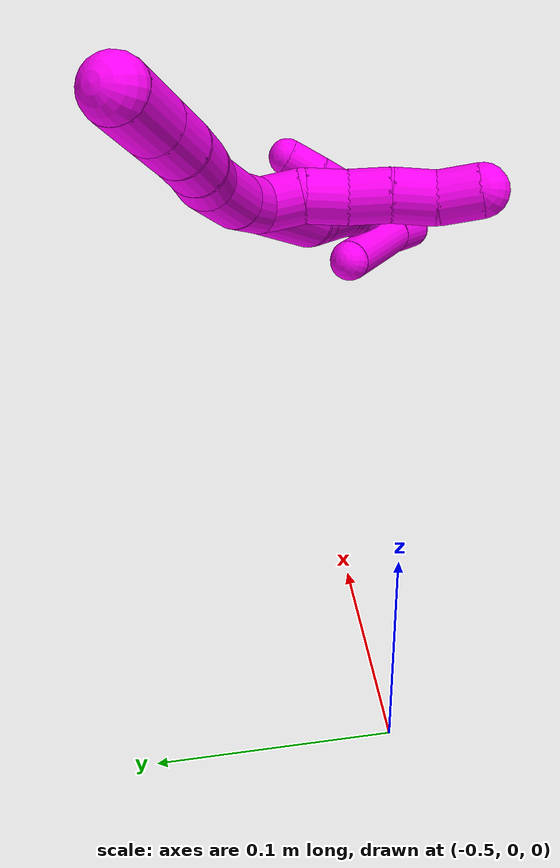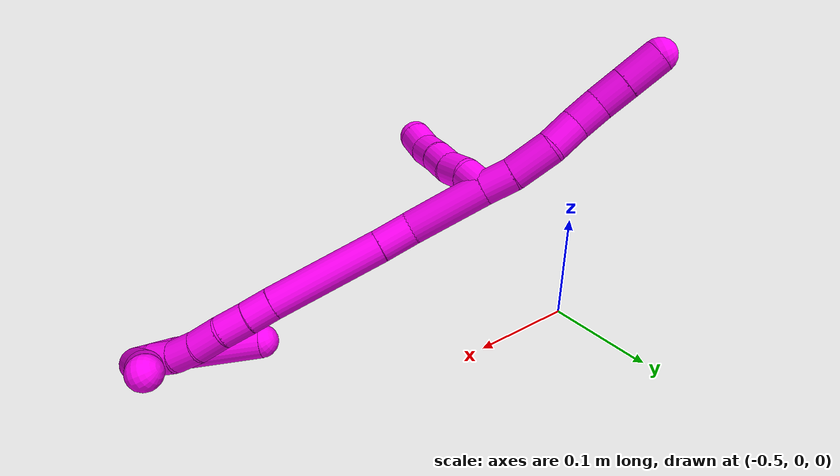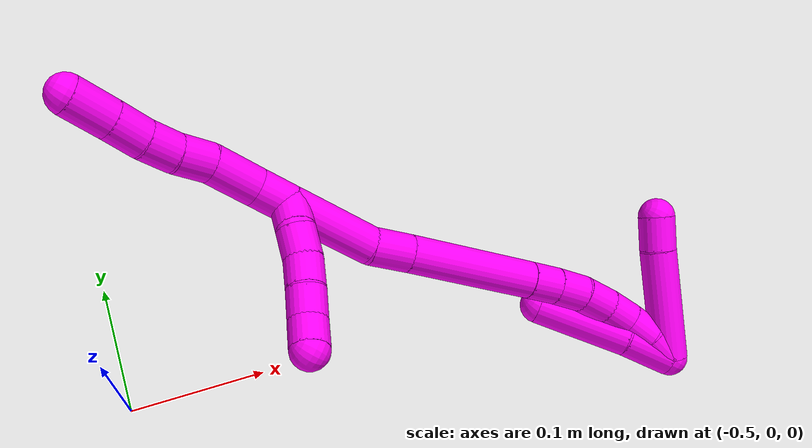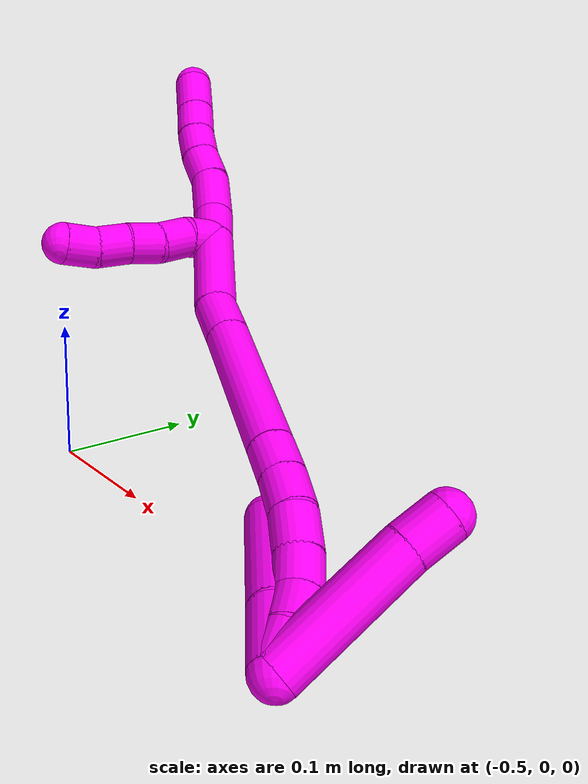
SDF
<sdf version="1.7">
 <world name="default">
  <model name="10">
   <static>0</static>
   <link name="10">
    <collision name="collision-cylinder-e_1_2_8">
     <pose>0.000237 -0.000864 0.011578 0.074522 0.020386 0.00076</pose>
     <geometry><cylinder><radius>0.0125</radius><length>0.023226</length></cylinder></geometry>
     <surface>
      <friction><ode><mu>1.16</mu><mu2>1.16</mu2><slip1>0</slip1><slip2>0</slip2></ode></friction>
      <contact><ode><kp>1e+06</kp><kd>1</kd><max_vel>0</max_vel><min_depth>0.001</min_depth></ode></contact>
     </surface>
    </collision>
    <visual name="visual-cylinder-e_1_2_8">
     <pose>0.000237 -0.000864 0.011578 0.074522 0.020386 0.00076</pose>
     <geometry><cylinder><radius>0.0125</radius><length>0.023226</length></cylinder></geometry>
     <material><ambient>1 0 0.964706 1</ambient></material>
    </visual>
    <collision name="collision-cylinder-e_2_8_9">
     <pose>0.003082 -0.004324 0.039095 0.161377 0.160139 0.012977</pose>
     <geometry><cylinder><radius>0.0125</radius><length>0.032716</length></cylinder></geometry>
     <surface>
      <friction><ode><mu>1.16</mu><mu2>1.16</mu2><slip1>0</slip1><slip2>0</slip2></ode></friction>
      <contact><ode><kp>1e+06</kp><kd>1</kd><max_vel>0</max_vel><min_depth>0.001</min_depth></ode></contact>
     </surface>
    </collision>
    <visual name="visual-cylinder-e_2_8_9">
     <pose>0.003082 -0.004324 0.039095 0.161377 0.160139 0.012977</pose>
     <geometry><cylinder><radius>0.0125</radius><length>0.032716</length></cylinder></geometry>
     <material><ambient>1 0 0.964706 1</ambient></material>
    </visual>
    <collision name="collision-cylinder-e_3_9_10">
     <pose>0.007492 -0.011322 0.065413 0.401269 0.158516 0.032302</pose>
     <geometry><cylinder><radius>0.0125</radius><length>0.022835</length></cylinder></geometry>
     <surface>
      <friction><ode><mu>1.16</mu><mu2>1.16</mu2><slip1>0</slip1><slip2>0</slip2></ode></friction>
      <contact><ode><kp>1e+06</kp><kd>1</kd><max_vel>0</max_vel><min_depth>0.001</min_depth></ode></contact>
     </surface>
    </collision>
    <visual name="visual-cylinder-e_3_9_10">
     <pose>0.007492 -0.011322 0.065413 0.401269 0.158516 0.032302</pose>
     <geometry><cylinder><radius>0.0125</radius><length>0.022835</length></cylinder></geometry>
     <material><ambient>1 0 0.964706 1</ambient></material>
    </visual>
    <collision name="collision-cylinder-e_4_10_11">
     <pose>0.011429 -0.018384 0.085736 0.261245 0.204463 0.026953</pose>
     <geometry><cylinder><radius>0.0125</radius><length>0.021026</length></cylinder></geometry>
     <surface>
      <friction><ode><mu>1.16</mu><mu2>1.16</mu2><slip1>0</slip1><slip2>0</slip2></ode></friction>
      <contact><ode><kp>1e+06</kp><kd>1</kd><max_vel>0</max_vel><min_depth>0.001</min_depth></ode></contact>
     </surface>
    </collision>
    <visual name="visual-cylinder-e_4_10_11">
     <pose>0.011429 -0.018384 0.085736 0.261245 0.204463 0.026953</pose>
     <geometry><cylinder><radius>0.0125</radius><length>0.021026</length></cylinder></geometry>
     <material><ambient>1 0 0.964706 1</ambient></material>
    </visual>
    <collision name="collision-cylinder-e_5_11_12">
     <pose>0.016145 -0.022657 0.106313 0.150636 0.235613 0.017862</pose>
     <geometry><cylinder><radius>0.0125</radius><length>0.022118</length></cylinder></geometry>
     <surface>
      <friction><ode><mu>1.16</mu><mu2>1.16</mu2><slip1>0</slip1><slip2>0</slip2></ode></friction>
      <contact><ode><kp>1e+06</kp><kd>1</kd><max_vel>0</max_vel><min_depth>0.001</min_depth></ode></contact>
     </surface>
    </collision>
    <visual name="visual-cylinder-e_5_11_12">
     <pose>0.016145 -0.022657 0.106313 0.150636 0.235613 0.017862</pose>
     <geometry><cylinder><radius>0.0125</radius><length>0.022118</length></cylinder></geometry>
     <material><ambient>1 0 0.964706 1</ambient></material>
    </visual>
    <collision name="collision-cylinder-e_6_12_6">
     <pose>0.021925 -0.026537 0.130426 0.166571 0.22981 0.019268</pose>
     <geometry><cylinder><radius>0.0125</radius><length>0.028079</length></cylinder></geometry>
     <surface>
      <friction><ode><mu>1.16</mu><mu2>1.16</mu2><slip1>0</slip1><slip2>0</slip2></ode></friction>
      <contact><ode><kp>1e+06</kp><kd>1</kd><max_vel>0</max_vel><min_depth>0.001</min_depth></ode></contact>
     </surface>
    </collision>
    <visual name="visual-cylinder-e_6_12_6">
     <pose>0.021925 -0.026537 0.130426 0.166571 0.22981 0.019268</pose>
     <geometry><cylinder><radius>0.0125</radius><length>0.028079</length></cylinder></geometry>
     <material><ambient>1 0 0.964706 1</ambient></material>
    </visual>
    <collision name="collision-cylinder-e_1_2_13">
     <pose>0.002767 -0.008554 -0.004379 2.04399 0.280353 0.453586</pose>
     <geometry><cylinder><radius>0.0125</radius><length>0.02</length></cylinder></geometry>
     <surface>
      <friction><ode><mu>1.16</mu><mu2>1.16</mu2><slip1>0</slip1><slip2>0</slip2></ode></friction>
      <contact><ode><kp>1e+06</kp><kd>1</kd><max_vel>0</max_vel><min_depth>0.001</min_depth></ode></contact>
     </surface>
    </collision>
    <visual name="visual-cylinder-e_1_2_13">
     <pose>0.002767 -0.008554 -0.004379 2.04399 0.280353 0.453586</pose>
     <geometry><cylinder><radius>0.0125</radius><length>0.02</length></cylinder></geometry>
     <material><ambient>1 0 0.964706 1</ambient></material>
    </visual>
    <collision name="collision-cylinder-e_2_13_14">
     <pose>0.005784 -0.025307 -0.014478 2.17984 0.024979 0.047871</pose>
     <geometry><cylinder><radius>0.0125</radius><length>0.02</length></cylinder></geometry>
     <surface>
      <friction><ode><mu>1.16</mu><mu2>1.16</mu2><slip1>0</slip1><slip2>0</slip2></ode></friction>
      <contact><ode><kp>1e+06</kp><kd>1</kd><max_vel>0</max_vel><min_depth>0.001</min_depth></ode></contact>
     </surface>
    </collision>
    <visual name="visual-cylinder-e_2_13_14">
     <pose>0.005784 -0.025307 -0.014478 2.17984 0.024979 0.047871</pose>
     <geometry><cylinder><radius>0.0125</radius><length>0.02</length></cylinder></geometry>
     <material><ambient>1 0 0.964706 1</ambient></material>
    </visual>
    <collision name="collision-cylinder-e_3_14_15">
     <pose>0.007071 -0.042651 -0.024107 1.97482 0.103945 0.157305</pose>
     <geometry><cylinder><radius>0.0125</radius><length>0.02</length></cylinder></geometry>
     <surface>
      <friction><ode><mu>1.16</mu><mu2>1.16</mu2><slip1>0</slip1><slip2>0</slip2></ode></friction>
      <contact><ode><kp>1e+06</kp><kd>1</kd><max_vel>0</max_vel><min_depth>0.001</min_depth></ode></contact>
     </surface>
    </collision>
    <visual name="visual-cylinder-e_3_14_15">
     <pose>0.007071 -0.042651 -0.024107 1.97482 0.103945 0.157305</pose>
     <geometry><cylinder><radius>0.0125</radius><length>0.02</length></cylinder></geometry>
     <material><ambient>1 0 0.964706 1</ambient></material>
    </visual>
    <collision name="collision-cylinder-e_4_15_16">
     <pose>0.007949 -0.060873 -0.032212 2.00377 -0.015987 -0.025001</pose>
     <geometry><cylinder><radius>0.0125</radius><length>0.02</length></cylinder></geometry>
     <surface>
      <friction><ode><mu>1.16</mu><mu2>1.16</mu2><slip1>0</slip1><slip2>0</slip2></ode></friction>
      <contact><ode><kp>1e+06</kp><kd>1</kd><max_vel>0</max_vel><min_depth>0.001</min_depth></ode></contact>
     </surface>
    </collision>
    <visual name="visual-cylinder-e_4_15_16">
     <pose>0.007949 -0.060873 -0.032212 2.00377 -0.015987 -0.025001</pose>
     <geometry><cylinder><radius>0.0125</radius><length>0.02</length></cylinder></geometry>
     <material><ambient>1 0 0.964706 1</ambient></material>
    </visual>
    <collision name="collision-cylinder-e_5_16_5">
     <pose>0.00991 -0.07921 -0.039526 1.89565 0.213747 0.296475</pose>
     <geometry><cylinder><radius>0.0125</radius><length>0.02</length></cylinder></geometry>
     <surface>
      <friction><ode><mu>1.16</mu><mu2>1.16</mu2><slip1>0</slip1><slip2>0</slip2></ode></friction>
      <contact><ode><kp>1e+06</kp><kd>1</kd><max_vel>0</max_vel><min_depth>0.001</min_depth></ode></contact>
     </surface>
    </collision>
    <visual name="visual-cylinder-e_5_16_5">
     <pose>0.00991 -0.07921 -0.039526 1.89565 0.213747 0.296475</pose>
     <geometry><cylinder><radius>0.0125</radius><length>0.02</length></cylinder></geometry>
     <material><ambient>1 0 0.964706 1</ambient></material>
    </visual>
    <collision name="collision-cylinder-e_1_2_17">
     <pose>-0.001664 0.003063 -0.029795 -3.03915 -0.05549 0.992294</pose>
     <geometry><cylinder><radius>0.0125</radius><length>0.059997</length></cylinder></geometry>
     <surface>
      <friction><ode><mu>1.16</mu><mu2>1.16</mu2><slip1>0</slip1><slip2>0</slip2></ode></friction>
      <contact><ode><kp>1e+06</kp><kd>1</kd><max_vel>0</max_vel><min_depth>0.001</min_depth></ode></contact>
     </surface>
    </collision>
    <visual name="visual-cylinder-e_1_2_17">
     <pose>-0.001664 0.003063 -0.029795 -3.03915 -0.05549 0.992294</pose>
     <geometry><cylinder><radius>0.0125</radius><length>0.059997</length></cylinder></geometry>
     <material><ambient>1 0 0.964706 1</ambient></material>
    </visual>
    <collision name="collision-cylinder-e_2_17_18">
     <pose>-0.002317 0.010422 -0.072305 -2.81578 0.075179 -0.449862</pose>
     <geometry><cylinder><radius>0.0125</radius><length>0.026917</length></cylinder></geometry>
     <surface>
      <friction><ode><mu>1.16</mu><mu2>1.16</mu2><slip1>0</slip1><slip2>0</slip2></ode></friction>
      <contact><ode><kp>1e+06</kp><kd>1</kd><max_vel>0</max_vel><min_depth>0.001</min_depth></ode></contact>
     </surface>
    </collision>
    <visual name="visual-cylinder-e_2_17_18">
     <pose>-0.002317 0.010422 -0.072305 -2.81578 0.075179 -0.449862</pose>
     <geometry><cylinder><radius>0.0125</radius><length>0.026917</length></cylinder></geometry>
     <material><ambient>1 0 0.964706 1</ambient></material>
    </visual>
    <collision name="collision-cylinder-e_3_18_19">
     <pose>0.002656 0.027546 -0.126918 -2.84448 0.090177 -0.585628</pose>
     <geometry><cylinder><radius>0.0125</radius><length>0.087995</length></cylinder></geometry>
     <surface>
      <friction><ode><mu>1.16</mu><mu2>1.16</mu2><slip1>0</slip1><slip2>0</slip2></ode></friction>
      <contact><ode><kp>1e+06</kp><kd>1</kd><max_vel>0</max_vel><min_depth>0.001</min_depth></ode></contact>
     </surface>
    </collision>
    <visual name="visual-cylinder-e_3_18_19">
     <pose>0.002656 0.027546 -0.126918 -2.84448 0.090177 -0.585628</pose>
     <geometry><cylinder><radius>0.0125</radius><length>0.087995</length></cylinder></geometry>
     <material><ambient>1 0 0.964706 1</ambient></material>
    </visual>
    <collision name="collision-cylinder-e_4_19_20">
     <pose>0.007196 0.043534 -0.178692 -2.83186 0.055597 -0.352523</pose>
     <geometry><cylinder><radius>0.0125</radius><length>0.020768</length></cylinder></geometry>
     <surface>
      <friction><ode><mu>1.16</mu><mu2>1.16</mu2><slip1>0</slip1><slip2>0</slip2></ode></friction>
      <contact><ode><kp>1e+06</kp><kd>1</kd><max_vel>0</max_vel><min_depth>0.001</min_depth></ode></contact>
     </surface>
    </collision>
    <visual name="visual-cylinder-e_4_19_20">
     <pose>0.007196 0.043534 -0.178692 -2.83186 0.055597 -0.352523</pose>
     <geometry><cylinder><radius>0.0125</radius><length>0.020768</length></cylinder></geometry>
     <material><ambient>1 0 0.964706 1</ambient></material>
    </visual>
    <collision name="collision-cylinder-e_5_20_21">
     <pose>0.008308 0.049355 -0.199015 -2.89229 0.049583 -0.390746</pose>
     <geometry><cylinder><radius>0.0125</radius><length>0.021589</length></cylinder></geometry>
     <surface>
      <friction><ode><mu>1.16</mu><mu2>1.16</mu2><slip1>0</slip1><slip2>0</slip2></ode></friction>
      <contact><ode><kp>1e+06</kp><kd>1</kd><max_vel>0</max_vel><min_depth>0.001</min_depth></ode></contact>
     </surface>
    </collision>
    <visual name="visual-cylinder-e_5_20_21">
     <pose>0.008308 0.049355 -0.199015 -2.89229 0.049583 -0.390746</pose>
     <geometry><cylinder><radius>0.0125</radius><length>0.021589</length></cylinder></geometry>
     <material><ambient>1 0 0.964706 1</ambient></material>
    </visual>
    <collision name="collision-cylinder-e_6_21_22">
     <pose>0.007952 0.05355 -0.220453 -3.00278 -0.080126 1.04605</pose>
     <geometry><cylinder><radius>0.0125</radius><length>0.022265</length></cylinder></geometry>
     <surface>
      <friction><ode><mu>1.16</mu><mu2>1.16</mu2><slip1>0</slip1><slip2>0</slip2></ode></friction>
      <contact><ode><kp>1e+06</kp><kd>1</kd><max_vel>0</max_vel><min_depth>0.001</min_depth></ode></contact>
     </surface>
    </collision>
    <visual name="visual-cylinder-e_6_21_22">
     <pose>0.007952 0.05355 -0.220453 -3.00278 -0.080126 1.04605</pose>
     <geometry><cylinder><radius>0.0125</radius><length>0.022265</length></cylinder></geometry>
     <material><ambient>1 0 0.964706 1</ambient></material>
    </visual>
    <collision name="collision-cylinder-e_7_22_23">
     <pose>0.006682 0.055104 -0.241669 -3.13977 -0.037012 3.04296</pose>
     <geometry><cylinder><radius>0.0125</radius><length>0.020468</length></cylinder></geometry>
     <surface>
      <friction><ode><mu>1.16</mu><mu2>1.16</mu2><slip1>0</slip1><slip2>0</slip2></ode></friction>
      <contact><ode><kp>1e+06</kp><kd>1</kd><max_vel>0</max_vel><min_depth>0.001</min_depth></ode></contact>
     </surface>
    </collision>
    <visual name="visual-cylinder-e_7_22_23">
     <pose>0.006682 0.055104 -0.241669 -3.13977 -0.037012 3.04296</pose>
     <geometry><cylinder><radius>0.0125</radius><length>0.020468</length></cylinder></geometry>
     <material><ambient>1 0 0.964706 1</ambient></material>
    </visual>
    <collision name="collision-cylinder-e_8_23_24">
     <pose>0.007314 0.053154 -0.261649 2.9424 0.101306 0.939007</pose>
     <geometry><cylinder><radius>0.0125</radius><length>0.020001</length></cylinder></geometry>
     <surface>
      <friction><ode><mu>1.16</mu><mu2>1.16</mu2><slip1>0</slip1><slip2>0</slip2></ode></friction>
      <contact><ode><kp>1e+06</kp><kd>1</kd><max_vel>0</max_vel><min_depth>0.001</min_depth></ode></contact>
     </surface>
    </collision>
    <visual name="visual-cylinder-e_8_23_24">
     <pose>0.007314 0.053154 -0.261649 2.9424 0.101306 0.939007</pose>
     <geometry><cylinder><radius>0.0125</radius><length>0.020001</length></cylinder></geometry>
     <material><ambient>1 0 0.964706 1</ambient></material>
    </visual>
    <collision name="collision-cylinder-e_9_24_1">
     <pose>0.007432 0.04841 -0.280966 2.85913 -0.089553 -0.610589</pose>
     <geometry><cylinder><radius>0.0125</radius><length>0.02</length></cylinder></geometry>
     <surface>
      <friction><ode><mu>1.16</mu><mu2>1.16</mu2><slip1>0</slip1><slip2>0</slip2></ode></friction>
      <contact><ode><kp>1e+06</kp><kd>1</kd><max_vel>0</max_vel><min_depth>0.001</min_depth></ode></contact>
     </surface>
    </collision>
    <visual name="visual-cylinder-e_9_24_1">
     <pose>0.007432 0.04841 -0.280966 2.85913 -0.089553 -0.610589</pose>
     <geometry><cylinder><radius>0.0125</radius><length>0.02</length></cylinder></geometry>
     <material><ambient>1 0 0.964706 1</ambient></material>
    </visual>
    <collision name="collision-cylinder-e_1_1_25">
     <pose>0.022711 0.07053 -0.266441 -0.801852 0.436787 -0.187596</pose>
     <geometry><cylinder><radius>0.0125</radius><length>0.076467</length></cylinder></geometry>
     <surface>
      <friction><ode><mu>1.16</mu><mu2>1.16</mu2><slip1>0</slip1><slip2>0</slip2></ode></friction>
      <contact><ode><kp>1e+06</kp><kd>1</kd><max_vel>0</max_vel><min_depth>0.001</min_depth></ode></contact>
     </surface>
    </collision>
    <visual name="visual-cylinder-e_1_1_25">
     <pose>0.022711 0.07053 -0.266441 -0.801852 0.436787 -0.187596</pose>
     <geometry><cylinder><radius>0.0125</radius><length>0.076467</length></cylinder></geometry>
     <material><ambient>1 0 0.964706 1</ambient></material>
    </visual>
    <collision name="collision-cylinder-e_2_25_4">
     <pose>0.043767 0.103819 -0.235702 -0.900826 0.427855 -0.209343</pose>
     <geometry><cylinder><radius>0.0125</radius><length>0.023533</length></cylinder></geometry>
     <surface>
      <friction><ode><mu>1.16</mu><mu2>1.16</mu2><slip1>0</slip1><slip2>0</slip2></ode></friction>
      <contact><ode><kp>1e+06</kp><kd>1</kd><max_vel>0</max_vel><min_depth>0.001</min_depth></ode></contact>
     </surface>
    </collision>
    <visual name="visual-cylinder-e_2_25_4">
     <pose>0.043767 0.103819 -0.235702 -0.900826 0.427855 -0.209343</pose>
     <geometry><cylinder><radius>0.0125</radius><length>0.023533</length></cylinder></geometry>
     <material><ambient>1 0 0.964706 1</ambient></material>
    </visual>
    <collision name="collision-cylinder-e_1_1_26">
     <pose>0.003588 0.045408 -0.273671 0.013385 -0.173148 -0.001162</pose>
     <geometry><cylinder><radius>0.0125</radius><length>0.034237</length></cylinder></geometry>
     <surface>
      <friction><ode><mu>1.16</mu><mu2>1.16</mu2><slip1>0</slip1><slip2>0</slip2></ode></friction>
      <contact><ode><kp>1e+06</kp><kd>1</kd><max_vel>0</max_vel><min_depth>0.001</min_depth></ode></contact>
     </surface>
    </collision>
    <visual name="visual-cylinder-e_1_1_26">
     <pose>0.003588 0.045408 -0.273671 0.013385 -0.173148 -0.001162</pose>
     <geometry><cylinder><radius>0.0125</radius><length>0.034237</length></cylinder></geometry>
     <material><ambient>1 0 0.964706 1</ambient></material>
    </visual>
    <collision name="collision-cylinder-e_2_26_3">
     <pose>-0.009136 0.045106 -0.225415 0.002435 -0.30183 -0.00037</pose>
     <geometry><cylinder><radius>0.0125</radius><length>0.065763</length></cylinder></geometry>
     <surface>
      <friction><ode><mu>1.16</mu><mu2>1.16</mu2><slip1>0</slip1><slip2>0</slip2></ode></friction>
      <contact><ode><kp>1e+06</kp><kd>1</kd><max_vel>0</max_vel><min_depth>0.001</min_depth></ode></contact>
     </surface>
    </collision>
    <visual name="visual-cylinder-e_2_26_3">
     <pose>-0.009136 0.045106 -0.225415 0.002435 -0.30183 -0.00037</pose>
     <geometry><cylinder><radius>0.0125</radius><length>0.065763</length></cylinder></geometry>
     <material><ambient>1 0 0.964706 1</ambient></material>
    </visual>
    <collision name="collision-sphere-3">
     <pose>-0.018911 0.045029 -0.19402 0 -0 0</pose>
     <geometry><sphere><radius>0.0125</radius></sphere></geometry>
     <surface>
      <friction><ode><mu>1.16</mu><mu2>1.16</mu2><slip1>0</slip1><slip2>0</slip2></ode></friction>
      <contact><ode><kp>1e+06</kp><kd>1</kd><max_vel>0</max_vel><min_depth>0.001</min_depth></ode></contact>
     </surface>
    </collision>
    <visual name="visual-sphere-3">
     <pose>-0.018911 0.045029 -0.19402 0 -0 0</pose>
     <geometry><sphere><radius>0.0125</radius></sphere></geometry>
     <material><ambient>1 0 0.964706 1</ambient></material>
    </visual>
    <collision name="collision-sphere-26">
     <pose>0.000639 0.045182 -0.256809 0 -0 0</pose>
     <geometry><sphere><radius>0.0125</radius></sphere></geometry>
     <surface>
      <friction><ode><mu>1.16</mu><mu2>1.16</mu2><slip1>0</slip1><slip2>0</slip2></ode></friction>
      <contact><ode><kp>1e+06</kp><kd>1</kd><max_vel>0</max_vel><min_depth>0.001</min_depth></ode></contact>
     </surface>
    </collision>
    <visual name="visual-sphere-26">
     <pose>0.000639 0.045182 -0.256809 0 -0 0</pose>
     <geometry><sphere><radius>0.0125</radius></sphere></geometry>
     <material><ambient>1 0 0.964706 1</ambient></material>
    </visual>
    <collision name="collision-sphere-4">
     <pose>0.048649 0.11221 -0.229055 0 -0 0</pose>
     <geometry><sphere><radius>0.0125</radius></sphere></geometry>
     <surface>
      <friction><ode><mu>1.16</mu><mu2>1.16</mu2><slip1>0</slip1><slip2>0</slip2></ode></friction>
      <contact><ode><kp>1e+06</kp><kd>1</kd><max_vel>0</max_vel><min_depth>0.001</min_depth></ode></contact>
     </surface>
    </collision>
    <visual name="visual-sphere-4">
     <pose>0.048649 0.11221 -0.229055 0 -0 0</pose>
     <geometry><sphere><radius>0.0125</radius></sphere></geometry>
     <material><ambient>1 0 0.964706 1</ambient></material>
    </visual>
    <collision name="collision-sphere-25">
     <pose>0.038885 0.095427 -0.24235 0 -0 0</pose>
     <geometry><sphere><radius>0.0125</radius></sphere></geometry>
     <surface>
      <friction><ode><mu>1.16</mu><mu2>1.16</mu2><slip1>0</slip1><slip2>0</slip2></ode></friction>
      <contact><ode><kp>1e+06</kp><kd>1</kd><max_vel>0</max_vel><min_depth>0.001</min_depth></ode></contact>
     </surface>
    </collision>
    <visual name="visual-sphere-25">
     <pose>0.038885 0.095427 -0.24235 0 -0 0</pose>
     <geometry><sphere><radius>0.0125</radius></sphere></geometry>
     <material><ambient>1 0 0.964706 1</ambient></material>
    </visual>
    <collision name="collision-sphere-1">
     <pose>0.006537 0.045634 -0.290532 0 -0 0</pose>
     <geometry><sphere><radius>0.0125</radius></sphere></geometry>
     <surface>
      <friction><ode><mu>1.16</mu><mu2>1.16</mu2><slip1>0</slip1><slip2>0</slip2></ode></friction>
      <contact><ode><kp>1e+06</kp><kd>1</kd><max_vel>0</max_vel><min_depth>0.001</min_depth></ode></contact>
     </surface>
    </collision>
    <visual name="visual-sphere-1">
     <pose>0.006537 0.045634 -0.290532 0 -0 0</pose>
     <geometry><sphere><radius>0.0125</radius></sphere></geometry>
     <material><ambient>1 0 0.964706 1</ambient></material>
    </visual>
    <collision name="collision-sphere-24">
     <pose>0.008326 0.051186 -0.271401 0 -0 0</pose>
     <geometry><sphere><radius>0.0125</radius></sphere></geometry>
     <surface>
      <friction><ode><mu>1.16</mu><mu2>1.16</mu2><slip1>0</slip1><slip2>0</slip2></ode></friction>
      <contact><ode><kp>1e+06</kp><kd>1</kd><max_vel>0</max_vel><min_depth>0.001</min_depth></ode></contact>
     </surface>
    </collision>
    <visual name="visual-sphere-24">
     <pose>0.008326 0.051186 -0.271401 0 -0 0</pose>
     <geometry><sphere><radius>0.0125</radius></sphere></geometry>
     <material><ambient>1 0 0.964706 1</ambient></material>
    </visual>
    <collision name="collision-sphere-23">
     <pose>0.006303 0.055123 -0.251896 0 -0 0</pose>
     <geometry><sphere><radius>0.0125</radius></sphere></geometry>
     <surface>
      <friction><ode><mu>1.16</mu><mu2>1.16</mu2><slip1>0</slip1><slip2>0</slip2></ode></friction>
      <contact><ode><kp>1e+06</kp><kd>1</kd><max_vel>0</max_vel><min_depth>0.001</min_depth></ode></contact>
     </surface>
    </collision>
    <visual name="visual-sphere-23">
     <pose>0.006303 0.055123 -0.251896 0 -0 0</pose>
     <geometry><sphere><radius>0.0125</radius></sphere></geometry>
     <material><ambient>1 0 0.964706 1</ambient></material>
    </visual>
    <collision name="collision-sphere-22">
     <pose>0.007061 0.055086 -0.231443 0 -0 0</pose>
     <geometry><sphere><radius>0.0125</radius></sphere></geometry>
     <surface>
      <friction><ode><mu>1.16</mu><mu2>1.16</mu2><slip1>0</slip1><slip2>0</slip2></ode></friction>
      <contact><ode><kp>1e+06</kp><kd>1</kd><max_vel>0</max_vel><min_depth>0.001</min_depth></ode></contact>
     </surface>
    </collision>
    <visual name="visual-sphere-22">
     <pose>0.007061 0.055086 -0.231443 0 -0 0</pose>
     <geometry><sphere><radius>0.0125</radius></sphere></geometry>
     <material><ambient>1 0 0.964706 1</ambient></material>
    </visual>
    <collision name="collision-sphere-21">
     <pose>0.008843 0.052015 -0.209463 0 -0 0</pose>
     <geometry><sphere><radius>0.0125</radius></sphere></geometry>
     <surface>
      <friction><ode><mu>1.16</mu><mu2>1.16</mu2><slip1>0</slip1><slip2>0</slip2></ode></friction>
      <contact><ode><kp>1e+06</kp><kd>1</kd><max_vel>0</max_vel><min_depth>0.001</min_depth></ode></contact>
     </surface>
    </collision>
    <visual name="visual-sphere-21">
     <pose>0.008843 0.052015 -0.209463 0 -0 0</pose>
     <geometry><sphere><radius>0.0125</radius></sphere></geometry>
     <material><ambient>1 0 0.964706 1</ambient></material>
    </visual>
    <collision name="collision-sphere-12">
     <pose>0.018727 -0.024271 0.116945 0 -0 0</pose>
     <geometry><sphere><radius>0.0125</radius></sphere></geometry>
     <surface>
      <friction><ode><mu>1.16</mu><mu2>1.16</mu2><slip1>0</slip1><slip2>0</slip2></ode></friction>
      <contact><ode><kp>1e+06</kp><kd>1</kd><max_vel>0</max_vel><min_depth>0.001</min_depth></ode></contact>
     </surface>
    </collision>
    <visual name="visual-sphere-12">
     <pose>0.018727 -0.024271 0.116945 0 -0 0</pose>
     <geometry><sphere><radius>0.0125</radius></sphere></geometry>
     <material><ambient>1 0 0.964706 1</ambient></material>
    </visual>
    <collision name="collision-sphere-11">
     <pose>0.013564 -0.021043 0.095681 0 -0 0</pose>
     <geometry><sphere><radius>0.0125</radius></sphere></geometry>
     <surface>
      <friction><ode><mu>1.16</mu><mu2>1.16</mu2><slip1>0</slip1><slip2>0</slip2></ode></friction>
      <contact><ode><kp>1e+06</kp><kd>1</kd><max_vel>0</max_vel><min_depth>0.001</min_depth></ode></contact>
     </surface>
    </collision>
    <visual name="visual-sphere-11">
     <pose>0.013564 -0.021043 0.095681 0 -0 0</pose>
     <geometry><sphere><radius>0.0125</radius></sphere></geometry>
     <material><ambient>1 0 0.964706 1</ambient></material>
    </visual>
    <collision name="collision-sphere-10">
     <pose>0.009295 -0.015726 0.075792 0 -0 0</pose>
     <geometry><sphere><radius>0.0125</radius></sphere></geometry>
     <surface>
      <friction><ode><mu>1.16</mu><mu2>1.16</mu2><slip1>0</slip1><slip2>0</slip2></ode></friction>
      <contact><ode><kp>1e+06</kp><kd>1</kd><max_vel>0</max_vel><min_depth>0.001</min_depth></ode></contact>
     </surface>
    </collision>
    <visual name="visual-sphere-10">
     <pose>0.009295 -0.015726 0.075792 0 -0 0</pose>
     <geometry><sphere><radius>0.0125</radius></sphere></geometry>
     <material><ambient>1 0 0.964706 1</ambient></material>
    </visual>
    <collision name="collision-sphere-9">
     <pose>0.00569 -0.006918 0.055034 0 -0 0</pose>
     <geometry><sphere><radius>0.0125</radius></sphere></geometry>
     <surface>
      <friction><ode><mu>1.16</mu><mu2>1.16</mu2><slip1>0</slip1><slip2>0</slip2></ode></friction>
      <contact><ode><kp>1e+06</kp><kd>1</kd><max_vel>0</max_vel><min_depth>0.001</min_depth></ode></contact>
     </surface>
    </collision>
    <visual name="visual-sphere-9">
     <pose>0.00569 -0.006918 0.055034 0 -0 0</pose>
     <geometry><sphere><radius>0.0125</radius></sphere></geometry>
     <material><ambient>1 0 0.964706 1</ambient></material>
    </visual>
    <collision name="collision-sphere-2">
     <geometry><sphere><radius>0.0125</radius></sphere></geometry>
     <surface>
      <friction><ode><mu>1.16</mu><mu2>1.16</mu2><slip1>0</slip1><slip2>0</slip2></ode></friction>
      <contact><ode><kp>1e+06</kp><kd>1</kd><max_vel>0</max_vel><min_depth>0.001</min_depth></ode></contact>
     </surface>
    </collision>
    <visual name="visual-sphere-2">
     <geometry><sphere><radius>0.0125</radius></sphere></geometry>
     <material><ambient>1 0 0.964706 1</ambient></material>
    </visual>
    <collision name="collision-sphere-19">
     <pose>0.006619 0.040374 -0.168817 0 -0 0</pose>
     <geometry><sphere><radius>0.0125</radius></sphere></geometry>
     <surface>
      <friction><ode><mu>1.16</mu><mu2>1.16</mu2><slip1>0</slip1><slip2>0</slip2></ode></friction>
      <contact><ode><kp>1e+06</kp><kd>1</kd><max_vel>0</max_vel><min_depth>0.001</min_depth></ode></contact>
     </surface>
    </collision>
    <visual name="visual-sphere-19">
     <pose>0.006619 0.040374 -0.168817 0 -0 0</pose>
     <geometry><sphere><radius>0.0125</radius></sphere></geometry>
     <material><ambient>1 0 0.964706 1</ambient></material>
    </visual>
    <collision name="collision-sphere-8">
     <pose>0.000473 -0.001729 0.023156 0 -0 0</pose>
     <geometry><sphere><radius>0.0125</radius></sphere></geometry>
     <surface>
      <friction><ode><mu>1.16</mu><mu2>1.16</mu2><slip1>0</slip1><slip2>0</slip2></ode></friction>
      <contact><ode><kp>1e+06</kp><kd>1</kd><max_vel>0</max_vel><min_depth>0.001</min_depth></ode></contact>
     </surface>
    </collision>
    <visual name="visual-sphere-8">
     <pose>0.000473 -0.001729 0.023156 0 -0 0</pose>
     <geometry><sphere><radius>0.0125</radius></sphere></geometry>
     <material><ambient>1 0 0.964706 1</ambient></material>
    </visual>
    <collision name="collision-sphere-6">
     <pose>0.025123 -0.028804 0.143907 0 -0 0</pose>
     <geometry><sphere><radius>0.0125</radius></sphere></geometry>
     <surface>
      <friction><ode><mu>1.16</mu><mu2>1.16</mu2><slip1>0</slip1><slip2>0</slip2></ode></friction>
      <contact><ode><kp>1e+06</kp><kd>1</kd><max_vel>0</max_vel><min_depth>0.001</min_depth></ode></contact>
     </surface>
    </collision>
    <visual name="visual-sphere-6">
     <pose>0.025123 -0.028804 0.143907 0 -0 0</pose>
     <geometry><sphere><radius>0.0125</radius></sphere></geometry>
     <material><ambient>1 0 0.964706 1</ambient></material>
    </visual>
    <collision name="collision-sphere-13">
     <pose>0.005534 -0.017107 -0.008759 0 -0 0</pose>
     <geometry><sphere><radius>0.0125</radius></sphere></geometry>
     <surface>
      <friction><ode><mu>1.16</mu><mu2>1.16</mu2><slip1>0</slip1><slip2>0</slip2></ode></friction>
      <contact><ode><kp>1e+06</kp><kd>1</kd><max_vel>0</max_vel><min_depth>0.001</min_depth></ode></contact>
     </surface>
    </collision>
    <visual name="visual-sphere-13">
     <pose>0.005534 -0.017107 -0.008759 0 -0 0</pose>
     <geometry><sphere><radius>0.0125</radius></sphere></geometry>
     <material><ambient>1 0 0.964706 1</ambient></material>
    </visual>
    <collision name="collision-sphere-14">
     <pose>0.006033 -0.033506 -0.020197 0 -0 0</pose>
     <geometry><sphere><radius>0.0125</radius></sphere></geometry>
     <surface>
      <friction><ode><mu>1.16</mu><mu2>1.16</mu2><slip1>0</slip1><slip2>0</slip2></ode></friction>
      <contact><ode><kp>1e+06</kp><kd>1</kd><max_vel>0</max_vel><min_depth>0.001</min_depth></ode></contact>
     </surface>
    </collision>
    <visual name="visual-sphere-14">
     <pose>0.006033 -0.033506 -0.020197 0 -0 0</pose>
     <geometry><sphere><radius>0.0125</radius></sphere></geometry>
     <material><ambient>1 0 0.964706 1</ambient></material>
    </visual>
    <collision name="collision-sphere-15">
     <pose>0.008109 -0.051796 -0.028017 0 -0 0</pose>
     <geometry><sphere><radius>0.0125</radius></sphere></geometry>
     <surface>
      <friction><ode><mu>1.16</mu><mu2>1.16</mu2><slip1>0</slip1><slip2>0</slip2></ode></friction>
      <contact><ode><kp>1e+06</kp><kd>1</kd><max_vel>0</max_vel><min_depth>0.001</min_depth></ode></contact>
     </surface>
    </collision>
    <visual name="visual-sphere-15">
     <pose>0.008109 -0.051796 -0.028017 0 -0 0</pose>
     <geometry><sphere><radius>0.0125</radius></sphere></geometry>
     <material><ambient>1 0 0.964706 1</ambient></material>
    </visual>
    <collision name="collision-sphere-16">
     <pose>0.007789 -0.069949 -0.036407 0 -0 0</pose>
     <geometry><sphere><radius>0.0125</radius></sphere></geometry>
     <surface>
      <friction><ode><mu>1.16</mu><mu2>1.16</mu2><slip1>0</slip1><slip2>0</slip2></ode></friction>
      <contact><ode><kp>1e+06</kp><kd>1</kd><max_vel>0</max_vel><min_depth>0.001</min_depth></ode></contact>
     </surface>
    </collision>
    <visual name="visual-sphere-16">
     <pose>0.007789 -0.069949 -0.036407 0 -0 0</pose>
     <geometry><sphere><radius>0.0125</radius></sphere></geometry>
     <material><ambient>1 0 0.964706 1</ambient></material>
    </visual>
    <collision name="collision-sphere-5">
     <pose>0.012031 -0.088471 -0.042645 0 -0 0</pose>
     <geometry><sphere><radius>0.0125</radius></sphere></geometry>
     <surface>
      <friction><ode><mu>1.16</mu><mu2>1.16</mu2><slip1>0</slip1><slip2>0</slip2></ode></friction>
      <contact><ode><kp>1e+06</kp><kd>1</kd><max_vel>0</max_vel><min_depth>0.001</min_depth></ode></contact>
     </surface>
    </collision>
    <visual name="visual-sphere-5">
     <pose>0.012031 -0.088471 -0.042645 0 -0 0</pose>
     <geometry><sphere><radius>0.0125</radius></sphere></geometry>
     <material><ambient>1 0 0.964706 1</ambient></material>
    </visual>
    <collision name="collision-sphere-17">
     <pose>-0.003328 0.006126 -0.059591 0 -0 0</pose>
     <geometry><sphere><radius>0.0125</radius></sphere></geometry>
     <surface>
      <friction><ode><mu>1.16</mu><mu2>1.16</mu2><slip1>0</slip1><slip2>0</slip2></ode></friction>
      <contact><ode><kp>1e+06</kp><kd>1</kd><max_vel>0</max_vel><min_depth>0.001</min_depth></ode></contact>
     </surface>
    </collision>
    <visual name="visual-sphere-17">
     <pose>-0.003328 0.006126 -0.059591 0 -0 0</pose>
     <geometry><sphere><radius>0.0125</radius></sphere></geometry>
     <material><ambient>1 0 0.964706 1</ambient></material>
    </visual>
    <collision name="collision-sphere-18">
     <pose>-0.001306 0.014717 -0.085019 0 -0 0</pose>
     <geometry><sphere><radius>0.0125</radius></sphere></geometry>
     <surface>
      <friction><ode><mu>1.16</mu><mu2>1.16</mu2><slip1>0</slip1><slip2>0</slip2></ode></friction>
      <contact><ode><kp>1e+06</kp><kd>1</kd><max_vel>0</max_vel><min_depth>0.001</min_depth></ode></contact>
     </surface>
    </collision>
    <visual name="visual-sphere-18">
     <pose>-0.001306 0.014717 -0.085019 0 -0 0</pose>
     <geometry><sphere><radius>0.0125</radius></sphere></geometry>
     <material><ambient>1 0 0.964706 1</ambient></material>
    </visual>
    <collision name="collision-sphere-20">
     <pose>0.007773 0.046695 -0.188567 0 -0 0</pose>
     <geometry><sphere><radius>0.0125</radius></sphere></geometry>
     <surface>
      <friction><ode><mu>1.16</mu><mu2>1.16</mu2><slip1>0</slip1><slip2>0</slip2></ode></friction>
      <contact><ode><kp>1e+06</kp><kd>1</kd><max_vel>0</max_vel><min_depth>0.001</min_depth></ode></contact>
     </surface>
    </collision>
    <visual name="visual-sphere-20">
     <pose>0.007773 0.046695 -0.188567 0 -0 0</pose>
     <geometry><sphere><radius>0.0125</radius></sphere></geometry>
     <material><ambient>1 0 0.964706 1</ambient></material>
    </visual>
    <inertial>
     <pose>0.007277 0.020243 -0.113557 0 -0 0</pose>
     <mass>0.75</mass>
     <inertia>
      <ixx>0.000139</ixx>
      <ixy>0</ixy>
      <ixz>0</ixz>
      <iyy>-1.4e-05</iyy>
      <iyz>0</iyz>
      <izz>-5.9e-05</izz>
     </inertia>
    </inertial>
   </link>
   <pose>-0.355542 0.034794 0.185497 -0.366058 -1.07524 -0.273875</pose>
  </model>
 </world>
</sdf>
